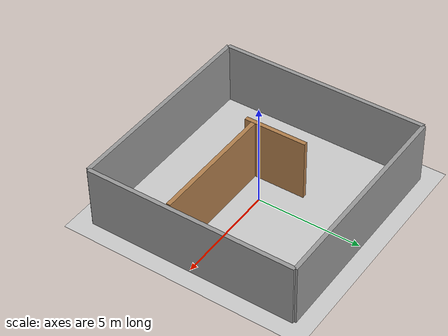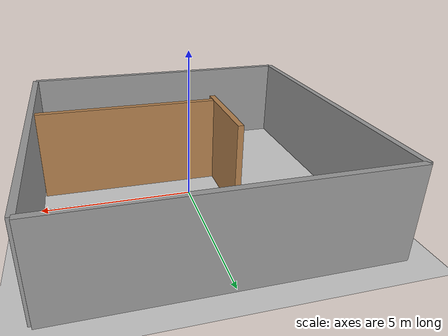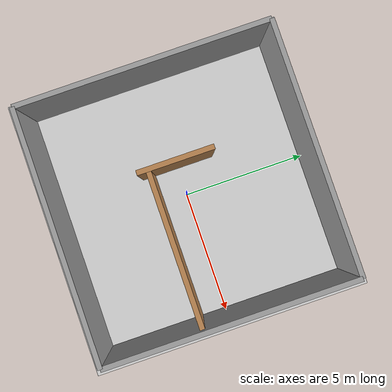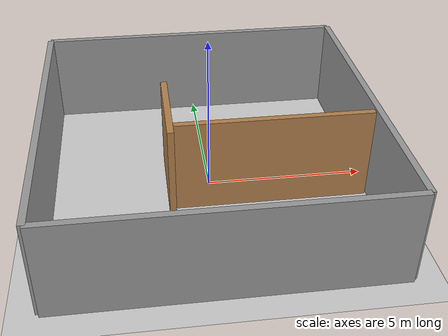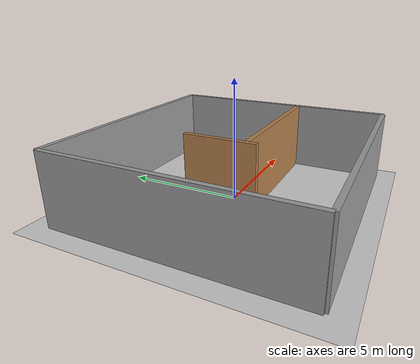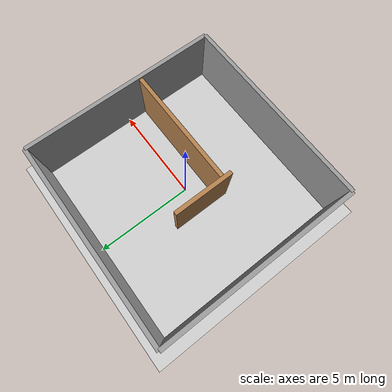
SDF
<?xml version="1.0" ?>
<sdf version="1.6">
  <world name="default">
    <include>
      <uri>model://ground_plane</uri>
    </include>
    <include>
      <uri>model://sun</uri>
    </include>

    <!-- Outer walls -->
    <model name="wall_1">
      <static>true</static>
      <pose>5 0 1.5 0 0 0</pose>
      <link name="link">
        <collision name="collision">
          <geometry>
            <box>
              <size>0.2 10 3</size>
            </box>
          </geometry>
        </collision>
        <visual name="visual">
          <geometry>
            <box>
              <size>0.2 10 3</size>
            </box>
          </geometry>
          <material>
            <script>
              <uri>file://media/materials/scripts/gazebo.material</uri>
              <name>Gazebo/Grey</name>
            </script>
          </material>
        </visual>
      </link>
    </model>

    <model name="wall_2">
      <static>true</static>
      <pose>-5 0 1.5 0 0 0</pose>
      <link name="link">
        <collision name="collision">
          <geometry>
            <box>
              <size>0.2 10 3</size>
            </box>
          </geometry>
        </collision>
        <visual name="visual">
          <geometry>
            <box>
              <size>0.2 10 3</size>
            </box>
          </geometry>
          <material>
            <script>
              <uri>file://media/materials/scripts/gazebo.material</uri>
              <name>Gazebo/Grey</name>
            </script>
          </material>
        </visual>
      </link>
    </model>

    <model name="wall_3">
      <static>true</static>
      <pose>0 5 1.5 0 0 1.5708</pose>
      <link name="link">
        <collision name="collision">
          <geometry>
            <box>
              <size>0.2 10 3</size>
            </box>
          </geometry>
        </collision>
        <visual name="visual">
          <geometry>
            <box>
              <size>0.2 10 3</size>
            </box>
          </geometry>
          <material>
            <script>
              <uri>file://media/materials/scripts/gazebo.material</uri>
              <name>Gazebo/Grey</name>
            </script>
          </material>
        </visual>
      </link>
    </model>

    <model name="wall_4">
      <static>true</static>
      <pose>0 -5 1.5 0 0 1.5708</pose>
      <link name="link">
        <collision name="collision">
          <geometry>
            <box>
              <size>0.2 10 3</size>
            </box>
          </geometry>
        </collision>
        <visual name="visual">
          <geometry>
            <box>
              <size>0.2 10 3</size>
            </box>
          </geometry>
          <material>
            <script>
              <uri>file://media/materials/scripts/gazebo.material</uri>
              <name>Gazebo/Grey</name>
            </script>
          </material>
        </visual>
      </link>
    </model>

    <!-- Inner walls -->
    <model name="inner_wall_1">
      <static>true</static>
      <pose>-1.254346 0.000006 1.5 0 0 0</pose>
      <link name="link">
        <collision name="collision">
          <geometry>
            <box>
              <size>0.2 6 3</size>
            </box>
          </geometry>
        </collision>
        <visual name="visual">
          <geometry>
            <box>
              <size>0.2 3 3</size>
            </box>
          </geometry>
          <material>
            <script>
              <uri>file://media/materials/scripts/gazebo.material</uri>
              <name>Gazebo/Wood</name>
            </script>
          </material>
        </visual>
      </link>
    </model>

    <model name="inner_wall_2">
      <static>true</static>
      <pose>1.848240 -1.066583 1.500000 0 0 1.570801</pose>
      <link name="link">
        <collision name="collision">
          <geometry>
            <box>
              <size>0.2 6 3</size>
            </box>
          </geometry>
        </collision>
        <visual name="visual">
          <geometry>
            <box>
              <size>0.2 6 3</size>
            </box>
          </geometry>
          <material>
            <script>
              <uri>file://media/materials/scripts/gazebo.material</uri>
              <name>Gazebo/Wood</name>
            </script>
          </material>
        </visual>
      </link>
    </model>
  </world>
</sdf>
